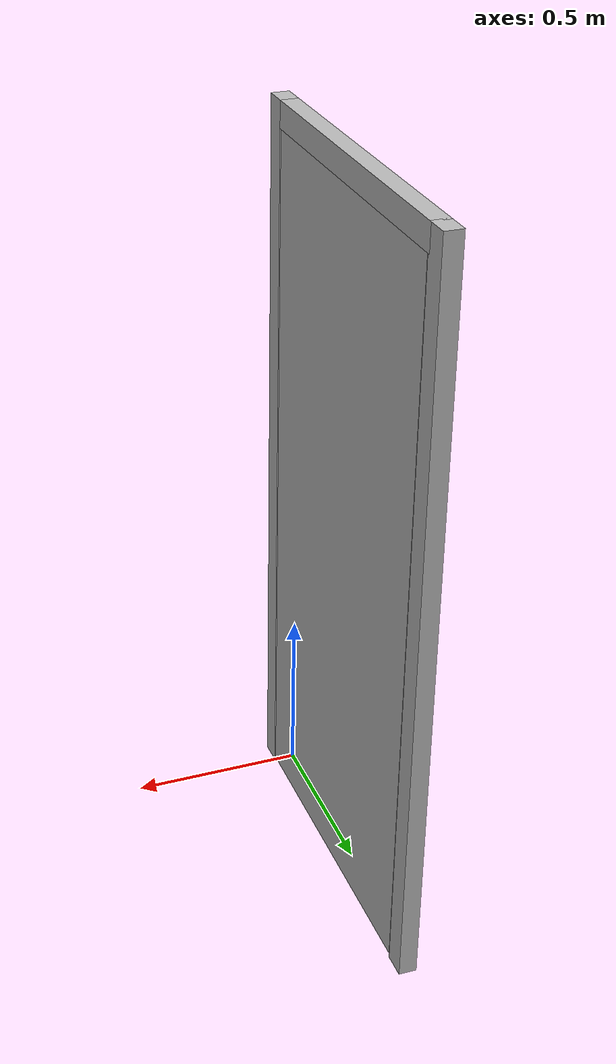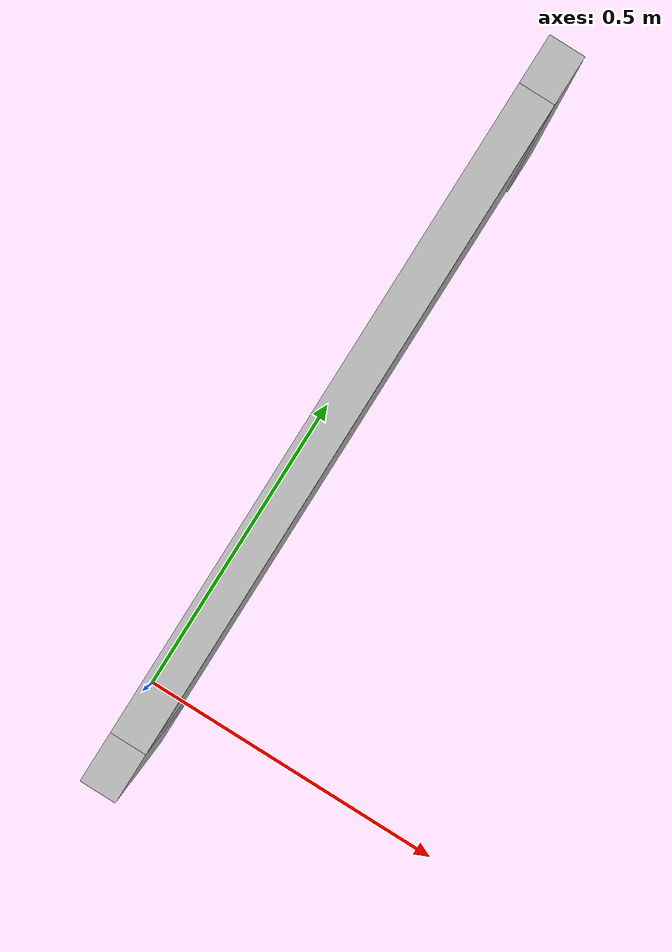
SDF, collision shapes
<?xml version="1.0" ?>
<sdf version="1.5">
  <model name="hinged_door">
    <link name="frame">
      <pose>0.06 -0.0005 0 0 0 0</pose>
      <collision name="collision_1">
        <pose>-0.025145 -0.03429 1.0541 0 0 0</pose>
        <geometry>
          <box>
            <size>0.05029 0.06858 2.10820</size>
          </box>
        </geometry>
      </collision>
      <collision name="collision_2">
        <pose>-0.025145 0.95631 1.0541 0 0 0</pose>
        <geometry>
          <box>
            <size>0.05029 0.06858 2.10820</size>
          </box>
        </geometry>
      </collision>
      <collision name="collision_3">
        <pose>-0.0251450 0.46482 2.07137 0 0 0</pose>
        <geometry>
          <box>
            <size>0.05029 0.92964 0.07366</size>
          </box>
        </geometry>
      </collision>
      <visual name="visual">
        <pose>0 -0.06858 0 0 0 0</pose>
        <geometry>
          <mesh>
            <uri>model://hinged_door/meshes/frame.dae</uri>
          </mesh>
        </geometry>
      </visual>
    </link>
    <link name="door">
      <pose>-0.0 0.000 2.040 3.14159 0 1.57</pose>
      <inertial>
        <mass>41.3256</mass>
        <pose>0.4569 0.0349 1.016 0 0 0</pose>
        <inertia>
          <ixx>14.2053</ixx>
          <ixy>0.0004</ixy>
          <ixz>0.0000</ixz>
          <iyy>17.1997</iyy>
          <iyz>0.0000</iyz>
          <izz>3.0298</izz>
        </inertia>
      </inertial>
      <collision name="collision">
        <pose>0.4569 0.0349 1.016 0 0 0</pose>
        <geometry>
          <box>
            <size>0.9144 0.04445 2.032</size>
          </box>
        </geometry>
      </collision>
      <visual name="visual">
        <pose>0 -0.06858 0 0 0 0</pose>
        <geometry>
          <mesh>
            <uri>model://hinged_door/meshes/door.dae</uri>
          </mesh>
        </geometry>
      </visual>
    </link>
    <joint name="hinge" type="revolute">
      <parent>frame</parent>
      <child>door</child>
      <axis>
        <xyz>0 0 1</xyz>
        <limit>
          <lower>0</lower>
          <upper>1.58</upper>
        </limit>
        <dynamics>
          <damping>1.0</damping>
          <friction>1.0</friction>
        </dynamics>
        <use_parent_model_frame>true</use_parent_model_frame>
      </axis>
      <physics>
        <ode>
          <cfm_damping>1</cfm_damping>
        </ode>
      </physics>
    </joint>
    <joint name="world_joint" type="revolute">
      <child>frame</child>
      <parent>world</parent>
      <axis>
        <limit>
          <lower>0</lower>
          <upper>0</upper>
        </limit>
        <xyz>0 1 0</xyz>
        <dynamics>
          <damping>1.0</damping>
        </dynamics>
        <use_parent_model_frame>true</use_parent_model_frame>
      </axis>
      <physics>
        <ode>
          <cfm_damping>1</cfm_damping>
        </ode>
      </physics>
    </joint>
  </model>
</sdf>
